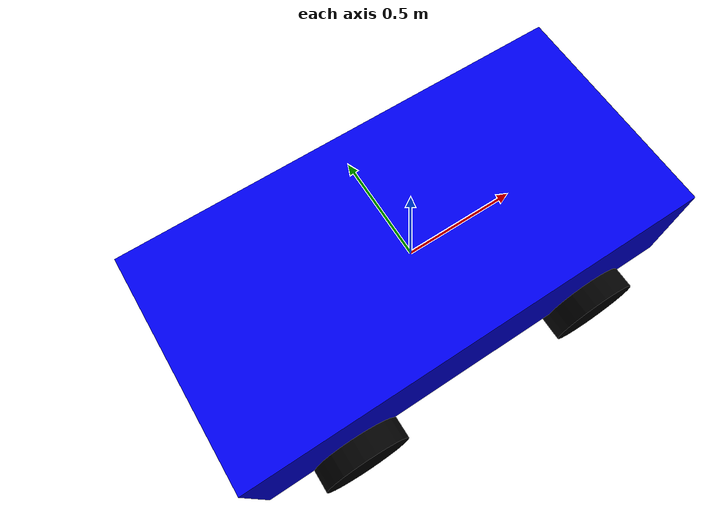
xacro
<?xml version="1.0"?>

<robot name="my_robot" xmlns:xacro="http://www.ros.org/wiki/xacro">

    <gazebo>
        <plugin name="ros_control" filename="libgazebo_ros_control.so">
            <robotNamespace>/</robotNamespace>
        </plugin>
    </gazebo>

    <xacro:include filename="$(find my_robot)/urdf/wheel.urdf.xacro"/>

    <xacro:property name="wheel_x_offset" value="0.6"/>
    <xacro:property name="wheel_y_offset" value="0.5"/>
    <xacro:property name="wheel_z_offset" value="-0.3"/>

    <link name="base_link">
        <visual>
            <geometry>
                <box size="2.0 1.0 0.5"/>
            </geometry>
            <material name="blue">
                <color rgba="0 0 1 1"/>
            </material>
        </visual>
        <collision>
            <geometry>
                <box size="2.0 1.0 0.5"/>
            </geometry>
        </collision>
        <inertial>
            <mass value="10.0"/>
            <inertia ixx="1.042" ixy="0.0" ixz="0.0" iyy="3.542" iyz="0.0" izz="4.167"/>
        </inertial>
    </link>

    <xacro:wheel prefix="front_left" radius="0.2" wheel_x_offset="${-wheel_x_offset}" wheel_y_offset="${wheel_y_offset}"
                             wheel_z_offset="${wheel_z_offset}"/>
    <xacro:wheel prefix="front_right" radius="0.2" wheel_x_offset="${-wheel_x_offset}" wheel_y_offset="${-wheel_y_offset}"
                             wheel_z_offset="${wheel_z_offset}"/>
    <xacro:wheel prefix="back_left" radius="0.2" wheel_x_offset="${wheel_x_offset}" wheel_y_offset="${wheel_y_offset}"
                             wheel_z_offset="${wheel_z_offset}"/>
    <xacro:wheel prefix="back_right" radius="0.2" wheel_x_offset="${wheel_x_offset}" wheel_y_offset="${-wheel_y_offset}"
                             wheel_z_offset="${wheel_z_offset}"/>

    <gazebo reference="base_link">
        <material>Gazebo/Blue</material>
    </gazebo>

    <xacro:color prefix="front_left"/>
    <xacro:color prefix="front_right"/>
    <xacro:color prefix="back_left"/>
    <xacro:color prefix="back_right"/>

    <xacro:wheel_transmission prefix="front_left"/>
    <xacro:wheel_transmission prefix="front_right"/>
    <xacro:wheel_transmission prefix="back_left"/>
    <xacro:wheel_transmission prefix="back_right"/>

</robot>

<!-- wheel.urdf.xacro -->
<robot xmlns:xacro="http://www.ros.org/wiki/xacro" name="wheel">

    <xacro:macro name="wheel"
                 params="prefix radius wheel_x_offset wheel_y_offset wheel_z_offset">
        <link name="${prefix}_wheel">
            <visual>
                <geometry>
                    <cylinder length="0.2" radius="${radius}"/>
                </geometry>
                <material name="black">
                    <color rgba="0 0 0 1"/>
                </material>
            </visual>
            <collision>
                <geometry>
                    <cylinder length="0.2" radius="${radius}"/>
                </geometry>
            </collision>
            <inertial>
                <mass value="1.0"/>
                <inertia ixx="0.01333" ixy="0.0" ixz="0.0" iyy="0.01333" iyz="0.0" izz="0.02"/>
            </inertial>
        </link>

        <joint name="${prefix}_joint" type="continuous">
            <parent link="base_link"/>
            <child link="${prefix}_wheel"/>
            <origin xyz="${wheel_x_offset} ${wheel_y_offset} ${wheel_z_offset}" rpy="-1.57 0 0"/>
            <axis xyz="0 0 1" />
        </joint>
    </xacro:macro>

    <xacro:macro name="wheel_transmission" params="prefix">
        <transmission name="${prefix}_transmission">
            <type>transmission_interface/SimpleTransmission</type>
            <joint name="${prefix}_joint">
                <hardwareInterface>hardware_interface/VelocityJointInterface</hardwareInterface>
            </joint>
            <actuator name="${prefix}_motor">
                <hardwareInterface>hardware_interface/VelocityJointInterface</hardwareInterface>
                <mechanicalReduction>1</mechanicalReduction>
            </actuator>
        </transmission>
    </xacro:macro>

    <xacro:macro name="color" params="prefix">
        <gazebo reference="${prefix}_wheel">
            <material>Gazebo/Black</material>
        </gazebo>
    </xacro:macro>

</robot>
